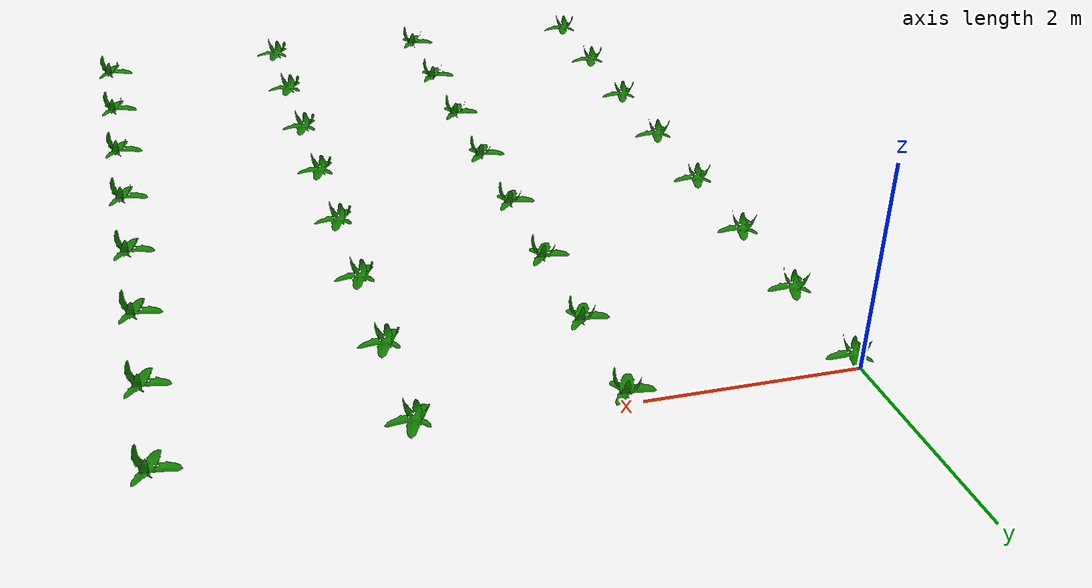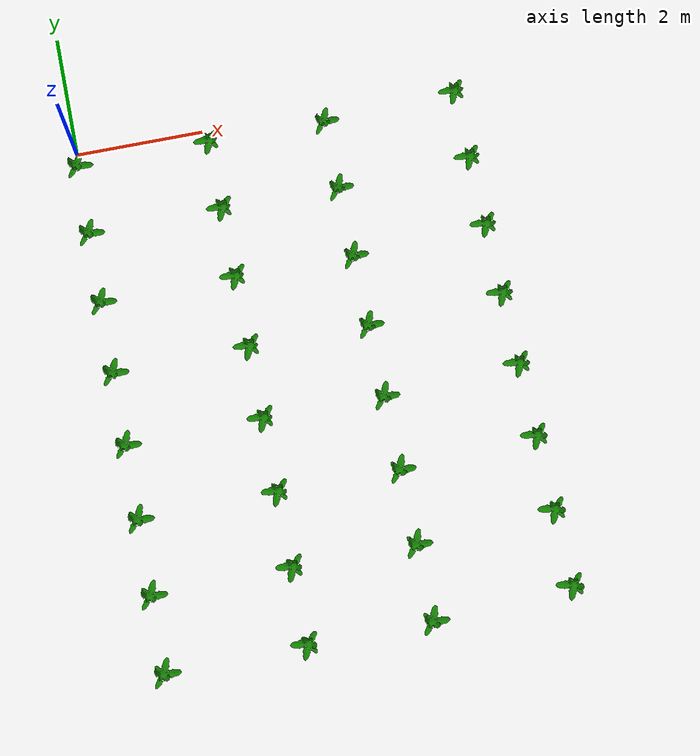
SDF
<sdf version='1.6'>
  <model name='plant_array'>
  <static>true</static>
    <link name='base_link'>
      <visual name='base_link_visual'>
        <pose frame=''>0 0 0 0 0 0</pose>
        <geometry>
          <mesh>
            <scale>1 1 1</scale>
            <uri>model://plant_array/plant.dae</uri>
          </mesh>
        </geometry>
      </visual>
    </link>
  </model>
</sdf>
